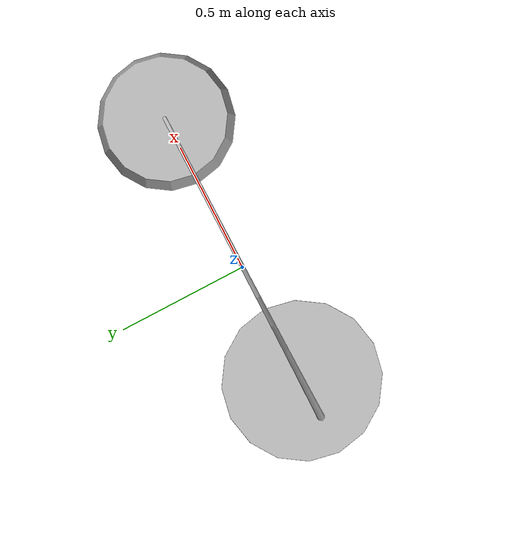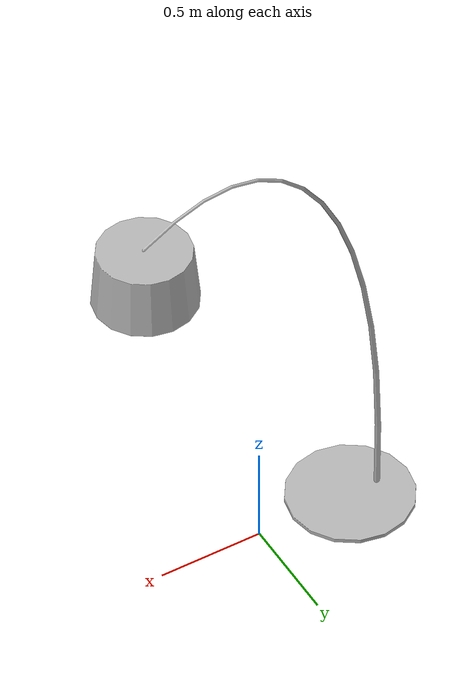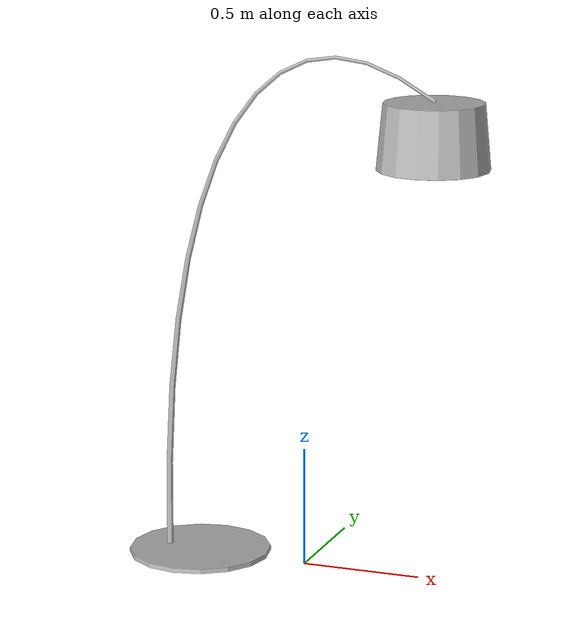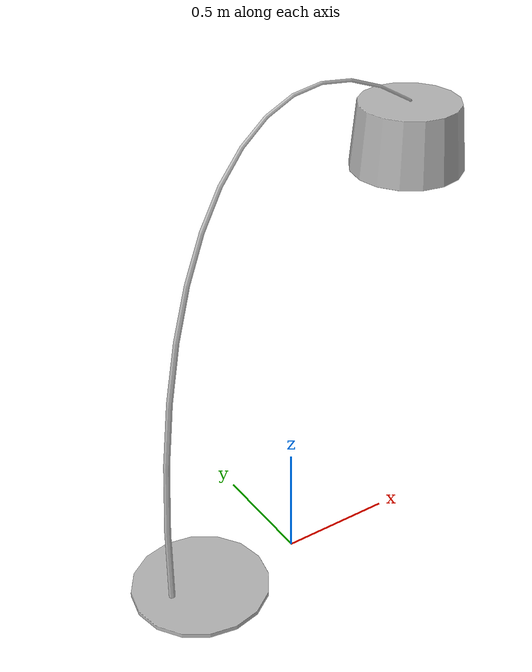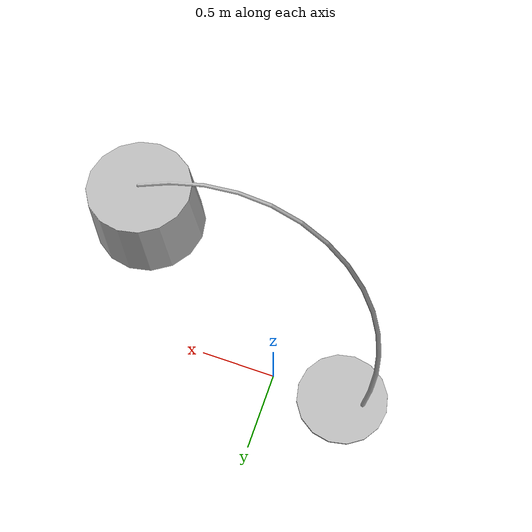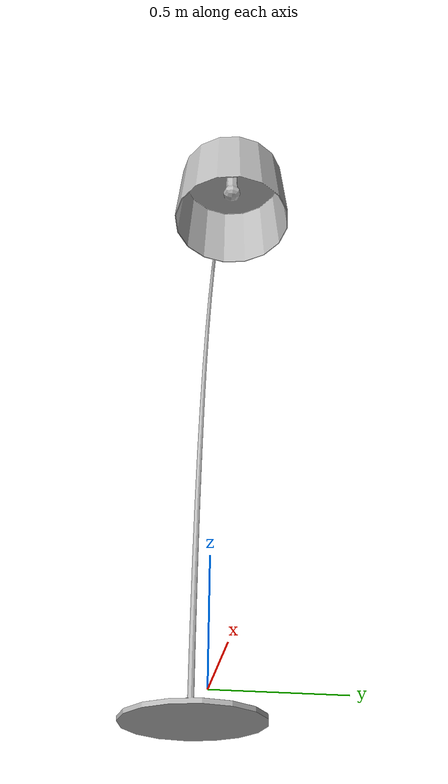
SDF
<?xml version='1.0'?>
<sdf version='1.4'>
  <model name='s__1719'>
    <pose>0 0 0 0 0 0</pose>
    <static>true</static>
    <link name='link'>
      <collision name='collision'>
        <pose>0 0 0 0 0 0</pose>
        <geometry>
          <box>
            <size>1.54986 0.6 2</size>
          </box>
        </geometry>
      </collision>
      <visual name='visual'>
        <pose>0 0 0 0 0 0</pose>
        <geometry>
          <mesh><uri>model://s__1719/s__1719.dae</uri></mesh>
        </geometry>
      </visual>
    </link>
  </model>
</sdf>
